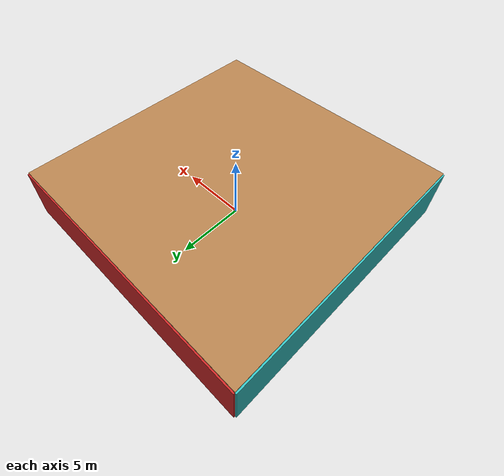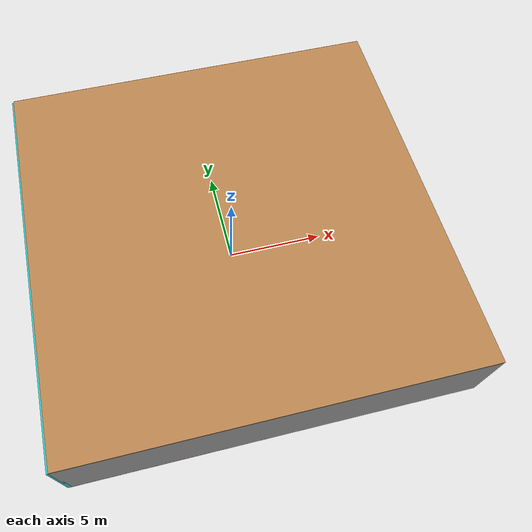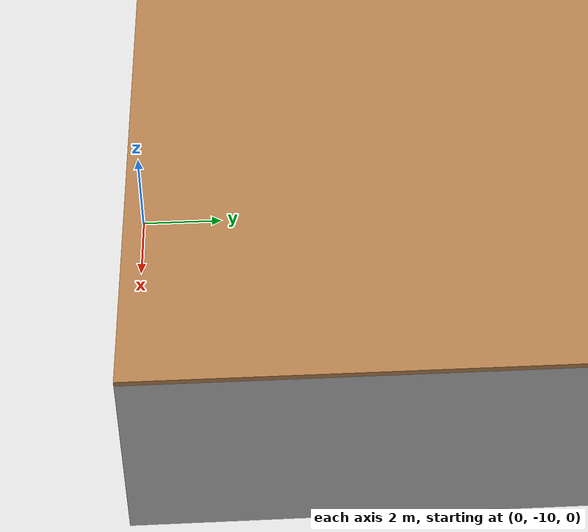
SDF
<sdf version="1.4">
 <world name="default">
  <physics type="ode">
   <max_step_size>0.001</max_step_size>
   <real_time_factor>1</real_time_factor>
   <real_time_update_rate>1000</real_time_update_rate>
   <gravity>0 0 -9.8</gravity>
  </physics>
  <scene><ambient>0.4 0.4 0.4 1</ambient><background>0.7 0.7 0.7 1</background><shadows>1</shadows></scene>
  <model name="Surrounding">
   <static>1</static>
   <link name="Ceiling">
    <collision name="Ceiling_Collision"><geometry><box><size>20 20 0.1</size></box></geometry></collision>
    <visual name="Ceiling_Visual">
     <geometry><box><size>20 20 0.1</size></box></geometry>
     <material>
      <script><uri>file://media/materials/scripts/gazebo.material</uri><name>Gazebo/Wood</name></script>
     </material>
    </visual>
    <pose>0 0 4.05 0 0 0</pose>
   </link>
   <link name="Wall_South">
    <collision name="Wall_South_Collision">
     <geometry><box><size>20 0 4</size></box></geometry>
     <pose>0 0 2 0 -0 0</pose>
    </collision>
    <visual name="Wall_South_Visual">
     <pose>0 0 2 0 -0 0</pose>
     <geometry><box><size>20 0 4</size></box></geometry>
     <material>
      <script><uri>file://media/materials/scripts/gazebo.material</uri><name>Gazebo/GreyGradientSky</name></script>
     </material>
    </visual>
    <velocity_decay><linear>0</linear><angular>0</angular></velocity_decay>
    <pose>0 -10 0 0 -0 0</pose>
   </link>
   <link name="Wall_East">
    <collision name="Wall_21_Collision">
     <geometry><box><size>20 0 4</size></box></geometry>
     <pose>0 0 2 0 -0 0</pose>
    </collision>
    <visual name="Wall_21_Visual">
     <pose>0 0 2 0 -0 0</pose>
     <geometry><box><size>20 0 4</size></box></geometry>
     <material>
      <script><uri>file://media/materials/scripts/gazebo.material</uri><name>Gazebo/JointAnchor</name></script>
     </material>
    </visual>
    <velocity_decay><linear>0</linear><angular>0</angular></velocity_decay>
    <pose>10 0 0 0 -0 1.5708</pose>
   </link>
   <link name="Wall_North">
    <collision name="Wall_22_Collision">
     <geometry><box><size>20 0.2 4</size></box></geometry>
     <pose>0 0 2 0 -0 0</pose>
    </collision>
    <visual name="Wall_22_Visual">
     <pose>0 0 2 0 -0 0</pose>
     <geometry><box><size>20 0.2 4</size></box></geometry>
     <material>
      <script><uri>file://media/materials/scripts/gazebo.material</uri><name>Gazebo/Red</name></script>
     </material>
    </visual>
    <velocity_decay><linear>0</linear><angular>0</angular></velocity_decay>
    <pose>0 10 0 0 -0 0</pose>
   </link>
   <link name="Wall_West">
    <collision name="Wall_23_Collision">
     <geometry><box><size>20 0.2 4</size></box></geometry>
     <pose>0 0 2 0 -0 0</pose>
    </collision>
    <visual name="Wall_23_Visual">
     <pose>0 0 2 0 -0 0</pose>
     <geometry><box><size>20 0.2 4</size></box></geometry>
     <material>
      <script>
       <uri>file://media/materials/scripts/gazebo.material</uri>
       <name>Gazebo/TurquoiseGlowOutline</name>
      </script>
     </material>
    </visual>
    <velocity_decay><linear>0</linear><angular>0</angular></velocity_decay>
    <pose>-10 0 0 0 0 -1.5708</pose>
   </link>
   <link name="Ground_link">
    <collision name="collision">
     <pose>0 0 .05 0 -0 0</pose>
     <geometry><box><size>20 20 0.1</size></box></geometry>
    </collision>
    <visual name="visual">
     <pose>0 0 .05 0 -0 0</pose>
     <geometry><box><size>20 20 0.1</size></box></geometry>
     <material>
      <script><uri>file://media/materials/scripts/gazebo.material</uri><name>Gazebo/Red</name></script>
     </material>
    </visual>
   </link>
   <static>1</static>
  </model>
  <spherical_coordinates>
   <surface_model>EARTH_WGS84</surface_model>
   <latitude_deg>0</latitude_deg>
   <longitude_deg>0</longitude_deg>
   <elevation>0</elevation>
   <heading_deg>0</heading_deg>
  </spherical_coordinates>
  <light name="lightball_0" type="diffuse">
   <diffuse>0.8 0.8 0.8 1</diffuse>
   <specular>0.2 0.2 0.2 1</specular>
   <attenuation>
    <range>100</range>
    <constant>0.7</constant>
    <linear>0.01</linear>
    <quadratic>0.001</quadratic>
   </attenuation>
   <direction>-0.5 0.1 -0.9</direction>
   <pose>-9.92235229489 3.09792395307 1.7936966551 0 0 0</pose>
  </light>
  <light name="lightball_1" type="diffuse">
   <diffuse>0.8 0.8 0.8 1</diffuse>
   <specular>0.2 0.2 0.2 1</specular>
   <attenuation>
    <range>100</range>
    <constant>0.7</constant>
    <linear>0.01</linear>
    <quadratic>0.001</quadratic>
   </attenuation>
   <direction>-0.5 0.1 -0.9</direction>
   <pose>1.95837227866 1.06258070651 3.83644060199 0 0 0</pose>
  </light>
  <light name="lightball_2" type="diffuse">
   <diffuse>0.8 0.8 0.8 1</diffuse>
   <specular>0.2 0.2 0.2 1</specular>
   <attenuation>
    <range>100</range>
    <constant>0.7</constant>
    <linear>0.01</linear>
    <quadratic>0.001</quadratic>
   </attenuation>
   <direction>-0.5 0.1 -0.9</direction>
   <pose>-2.0206699068 7.28881837046 2.01848328311 0 0 0</pose>
  </light>
  <light name="lightball_3" type="diffuse">
   <diffuse>0.8 0.8 0.8 1</diffuse>
   <specular>0.2 0.2 0.2 1</specular>
   <attenuation>
    <range>100</range>
    <constant>0.7</constant>
    <linear>0.01</linear>
    <quadratic>0.001</quadratic>
   </attenuation>
   <direction>-0.5 0.1 -0.9</direction>
   <pose>-9.30962434416 6.78986569437 0.951230841939 0 0 0</pose>
  </light>
  <light name="lightball_4" type="diffuse">
   <diffuse>0.8 0.8 0.8 1</diffuse>
   <specular>0.2 0.2 0.2 1</specular>
   <attenuation>
    <range>100</range>
    <constant>0.7</constant>
    <linear>0.01</linear>
    <quadratic>0.001</quadratic>
   </attenuation>
   <direction>-0.5 0.1 -0.9</direction>
   <pose>-5.70367898068 8.31254037242 1.15036185064 0 0 0</pose>
  </light>
  <include><uri>model://cabinet</uri><pose>-4.92745994426 -2.00326989477 0 0 0 1.58243744739</pose></include>
  <include>
   <uri>model://construction_cone</uri>
   <pose>1.31090002003 -3.87428276 0 0 0 0.358644503437</pose>
  </include>
  <include>
   <uri>model://construction_cone</uri>
   <pose>1.37699919142 8.59776652327 0 0 0 1.64738232963</pose>
  </include>
  <include>
   <uri>model://construction_cone</uri>
   <pose>4.70816227926 -7.33680666117 0 0 0 2.96213670278</pose>
  </include>
  <include>
   <uri>model://construction_cone</uri>
   <pose>8.23838423879 -7.79378976237 0 0 0 1.89639839021</pose>
  </include>
 </world>
</sdf>

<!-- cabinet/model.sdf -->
<sdf version="1.5">
  <model name="cabinet">
    <static>true</static>
    <link name="cabinet_bottom_plate">
      <inertial>
        <pose>0 0 -1 0 0 0</pose>
        <inertia>
          <ixx>2.050000</ixx>
          <ixy>0</ixy>
          <ixz>0</ixz>
          <iyy>2.050000</iyy>
          <iyz>0</iyz>
          <izz>2.050000</izz>
        </inertia>
        <mass>25.000000</mass>
      </inertial>
      <collision name="cabinet_bottom_plate_geom">
        <pose>0 0 0.010000 0 0 0</pose>
        <geometry>
          <box>
            <size>0.450000 0.450000 0.020000</size>
          </box>
        </geometry>
      </collision>
      <visual name="cabinet_bottom_plate_geom_visual">
        <pose>0 0 0.010000 0 0 0</pose>
        <geometry>
          <box>
            <size>0.450000 0.450000 0.020000</size>
          </box>
        </geometry>
        <material>
          <script>
            <uri>model://media/materials/scripts/gazebo.material</uri>
            <name>Gazebo/Wood</name>
          </script>
        </material>
      </visual>
      <collision name="cabinet_bottom_plate_geom_cabinet_back_plate">
        <pose>0.235000 0 0.510000 0 0 0</pose>
        <geometry>
          <box>
            <size>0.020000 0.450000 1.020000</size>
          </box>
        </geometry>
      </collision>
      <visual name="cabinet_bottom_plate_geom_cabinet_back_plate_visual">
        <pose>0.235000 0 0.510000 0 0 0</pose>
        <geometry>
          <box>
            <size>0.020000 0.450000 1.020000</size>
          </box>
        </geometry>
        <material>
          <script>
            <uri>model://media/materials/scripts/gazebo.material</uri>
            <name>Gazebo/Wood</name>
          </script>
        </material>
      </visual>
      <collision name="cabinet_bottom_plate_geom_cabinet_left_plate">
        <pose>0 0.235000 0.510000 0 0 0</pose>
        <geometry>
          <box>
            <size>0.450000 0.020000 1.020000</size>
          </box>
        </geometry>
      </collision>
      <visual name="cabinet_bottom_plate_geom_cabinet_left_plate_visual">
        <pose>0 0.235000 0.510000 0 0 0</pose>
        <geometry>
          <box>
            <size>0.450000 0.020000 1.020000</size>
          </box>
        </geometry>
        <material>
          <script>
            <uri>model://media/materials/scripts/gazebo.material</uri>
            <name>Gazebo/Wood</name>
          </script>
        </material>
      </visual>
      <collision name="cabinet_bottom_plate_geom_cabinet_middle_plate">
        <pose>0 0 0.510000 0 0 0</pose>
        <geometry>
          <box>
            <size>0.450000 0.450000 0.020000</size>
          </box>
        </geometry>
      </collision>
      <visual name="cabinet_bottom_plate_geom_cabinet_middle_plate_visual">
        <pose>0 0 0.510000 0 0 0</pose>
        <geometry>
          <box>
            <size>0.450000 0.450000 0.020000</size>
          </box>
        </geometry>
        <material>
          <script>
            <uri>model://media/materials/scripts/gazebo.material</uri>
            <name>Gazebo/Wood</name>
          </script>
        </material>
      </visual>
      <collision name="cabinet_bottom_plate_geom_cabinet_right_plate">
        <pose>0 -0.235000 0.510000 0 0 0</pose>
        <geometry>
          <box>
            <size>0.450000 0.020000 1.020000</size>
          </box>
        </geometry>
      </collision>
      <visual name="cabinet_bottom_plate_geom_cabinet_right_plate_visual">
        <pose>0 -0.235000 0.510000 0 0 0</pose>
        <geometry>
          <box>
            <size>0.450000 0.020000 1.020000</size>
          </box>
        </geometry>
        <material>
          <script>
            <uri>model://media/materials/scripts/gazebo.material</uri>
            <name>Gazebo/Wood</name>
          </script>
        </material>
      </visual>
      <collision name="cabinet_bottom_plate_geom_cabinet_top_plate">
        <pose>0 0 1.010000 0 0 0</pose>
        <geometry>
          <box>
            <size>0.450000 0.450000 0.020000</size>
          </box>
        </geometry>
      </collision>
      <visual name="cabinet_bottom_plate_geom_cabinet_top_plate_visual">
        <pose>0 0 1.010000 0 0 0</pose>
        <geometry>
          <box>
            <size>0.450000 0.450000 0.020000</size>
          </box>
        </geometry>
        <material>
          <script>
            <uri>model://media/materials/scripts/gazebo.material</uri>
            <name>Gazebo/Wood</name>
          </script>
        </material>
      </visual>
    </link>
  </model>
</sdf>

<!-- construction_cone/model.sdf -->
<sdf version="1.5">
  <model name="Construction Cone">
    <link name="link">
      <collision name="collision">
        <geometry>
          <mesh>
            <scale>10 10 10</scale>
            <uri>file://isr-testbed/construction_cone/meshes/construction_cone.dae</uri>
          </mesh>
        </geometry>
      </collision>
      <visual name="visual">
        <geometry>
          <mesh>
            <scale>10 10 10</scale>
            <uri>file://isr-testbed/construction_cone/meshes/construction_cone.dae</uri>
          </mesh>
        </geometry>
      </visual>
    </link>
  </model>
</sdf>
